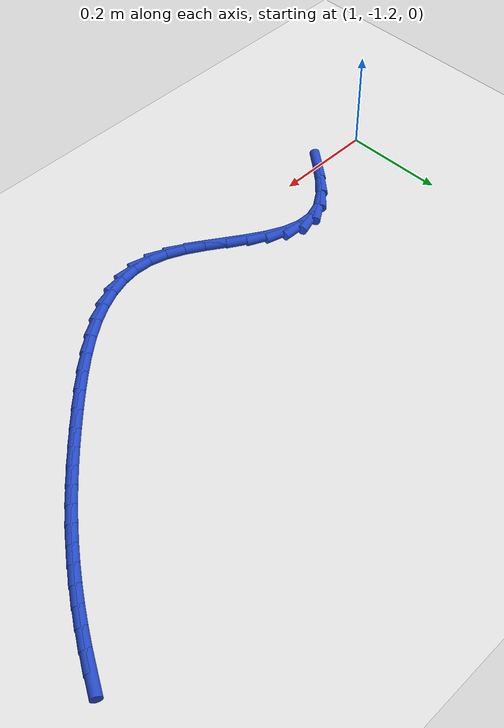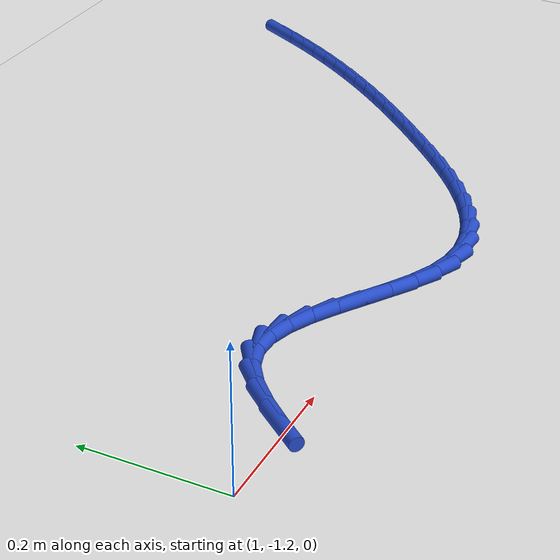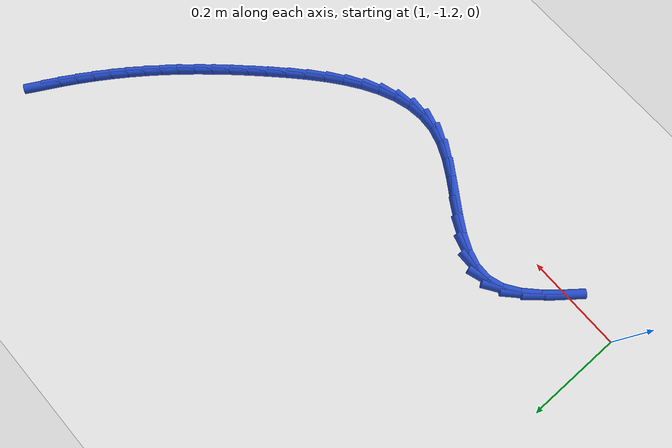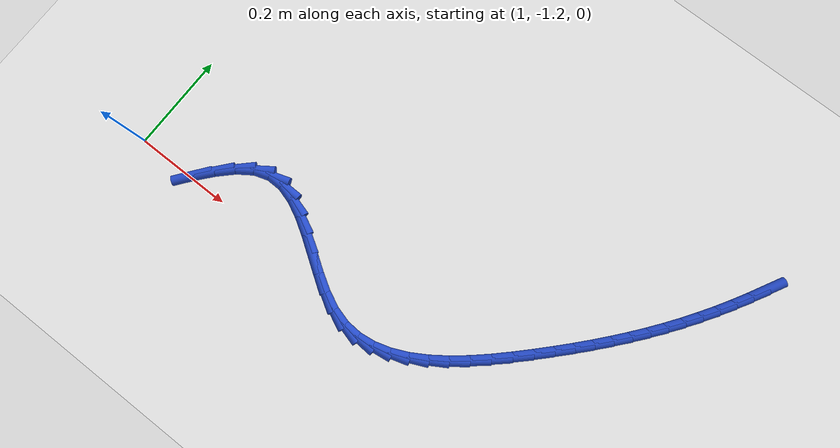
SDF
<sdf version="1.6">
 <world name="default">
  <model name="ground_plane">
   <static>1</static>
   <link name="link">
    <collision name="collision">
     <geometry><plane><normal>0 0 1</normal><size>100 100</size></plane></geometry>
     <surface><friction><ode><mu>100</mu><mu2>50</mu2></ode></friction></surface>
    </collision>
    <visual name="visual">
     <cast_shadows>0</cast_shadows>
     <geometry><plane><normal>0 0 1</normal><size>100 100</size></plane></geometry>
     <material>
      <script><uri>file://media/materials/scripts/gazebo.material</uri><name>Gazebo/WhiteGlow</name></script>
     </material>
    </visual>
   </link>
  </model>
  <model name="line">
   <link name="link_127">
    <pose>2.124885651335972 -0.6998409385289837 0.01 0 1.57 1.0710073317774622</pose>
    <collision name="collision">
     <geometry><cylinder><radius>0.01</radius><length>0.08</length></cylinder></geometry>
    </collision>
    <visual name="visual">
     <material>
      <script><name>Gazebo/Blue</name><uri>file://media/materials/scripts/gazebo.material</uri></script>
     </material>
     <geometry><cylinder><radius>0.01</radius><length>0.08</length></cylinder></geometry>
    </visual>
   </link>
   <link name="link_128">
    <pose>2.1077690370066415 -0.7311884102983778 0.01 0 1.57 1.0445506364632249</pose>
    <collision name="collision">
     <geometry><cylinder><radius>0.01</radius><length>0.08</length></cylinder></geometry>
    </collision>
    <visual name="visual">
     <material>
      <script><name>Gazebo/Blue</name><uri>file://media/materials/scripts/gazebo.material</uri></script>
     </material>
     <geometry><cylinder><radius>0.01</radius><length>0.08</length></cylinder></geometry>
    </visual>
   </link>
   <link name="link_129">
    <pose>2.090080430172719 -0.7616395493683459 0.01 0 1.57 1.018941520231611</pose>
    <collision name="collision">
     <geometry><cylinder><radius>0.01</radius><length>0.08</length></cylinder></geometry>
    </collision>
    <visual name="visual">
     <material>
      <script><name>Gazebo/Blue</name><uri>file://media/materials/scripts/gazebo.material</uri></script>
     </material>
     <geometry><cylinder><radius>0.01</radius><length>0.08</length></cylinder></geometry>
    </visual>
   </link>
   <link name="link_130">
    <pose>2.0718783756213726 -0.7912046506021759 0.01 0 1.57 0.9930822187000926</pose>
    <collision name="collision">
     <geometry><cylinder><radius>0.01</radius><length>0.08</length></cylinder></geometry>
    </collision>
    <visual name="visual">
     <material>
      <script><name>Gazebo/Blue</name><uri>file://media/materials/scripts/gazebo.material</uri></script>
     </material>
     <geometry><cylinder><radius>0.01</radius><length>0.08</length></cylinder></geometry>
    </visual>
   </link>
   <link name="link_131">
    <pose>2.053106507097106 -0.8200000014221306 0.01 0 1.57 0.9672613384659791</pose>
    <collision name="collision">
     <geometry><cylinder><radius>0.01</radius><length>0.08</length></cylinder></geometry>
    </collision>
    <visual name="visual">
     <material>
      <script><name>Gazebo/Blue</name><uri>file://media/materials/scripts/gazebo.material</uri></script>
     </material>
     <geometry><cylinder><radius>0.01</radius><length>0.08</length></cylinder></geometry>
    </visual>
   </link>
   <link name="link_132">
    <pose>2.033705025837022 -0.8481450553538746 0.01 0 1.57 0.9418145961172039</pose>
    <collision name="collision">
     <geometry><cylinder><radius>0.01</radius><length>0.08</length></cylinder></geometry>
    </collision>
    <visual name="visual">
     <material>
      <script><name>Gazebo/Blue</name><uri>file://media/materials/scripts/gazebo.material</uri></script>
     </material>
     <geometry><cylinder><radius>0.01</radius><length>0.08</length></cylinder></geometry>
    </visual>
   </link>
   <link name="link_133">
    <pose>2.0136141330782182 -0.8757592659230738 0.01 0 1.57 0.9170700820153106</pose>
    <collision name="collision">
     <geometry><cylinder><radius>0.01</radius><length>0.08</length></cylinder></geometry>
    </collision>
    <visual name="visual">
     <material>
      <script><name>Gazebo/Blue</name><uri>file://media/materials/scripts/gazebo.material</uri></script>
     </material>
     <geometry><cylinder><radius>0.01</radius><length>0.08</length></cylinder></geometry>
    </visual>
   </link>
   <link name="link_134">
    <pose>1.9927740300577976 -0.9029620866553943 0.01 0 1.57 0.8933331657874355</pose>
    <collision name="collision">
     <geometry><cylinder><radius>0.01</radius><length>0.08</length></cylinder></geometry>
    </collision>
    <visual name="visual">
     <material>
      <script><name>Gazebo/Blue</name><uri>file://media/materials/scripts/gazebo.material</uri></script>
     </material>
     <geometry><cylinder><radius>0.01</radius><length>0.08</length></cylinder></geometry>
    </visual>
   </link>
   <link name="link_135">
    <pose>1.971124918012859 -0.9298729710765027 0.01 0 1.57 0.8708734557451395</pose>
    <collision name="collision">
     <geometry><cylinder><radius>0.01</radius><length>0.08</length></cylinder></geometry>
    </collision>
    <visual name="visual">
     <material>
      <script><name>Gazebo/Blue</name><uri>file://media/materials/scripts/gazebo.material</uri></script>
     </material>
     <geometry><cylinder><radius>0.01</radius><length>0.08</length></cylinder></geometry>
    </visual>
   </link>
   <link name="link_136">
    <pose>1.9486069981805043 -0.9566113727120634 0.01 0 1.57 0.8499149882618812</pose>
    <collision name="collision">
     <geometry><cylinder><radius>0.01</radius><length>0.08</length></cylinder></geometry>
    </collision>
    <visual name="visual">
     <material>
      <script><name>Gazebo/Blue</name><uri>file://media/materials/scripts/gazebo.material</uri></script>
     </material>
     <geometry><cylinder><radius>0.01</radius><length>0.08</length></cylinder></geometry>
    </visual>
   </link>
   <link name="link_137">
    <pose>1.9251604717978343 -0.9832967450877429 0.01 0 1.57 0.8306302918312929</pose>
    <collision name="collision">
     <geometry><cylinder><radius>0.01</radius><length>0.08</length></cylinder></geometry>
    </collision>
    <visual name="visual">
     <material>
      <script><name>Gazebo/Blue</name><uri>file://media/materials/scripts/gazebo.material</uri></script>
     </material>
     <geometry><cylinder><radius>0.01</radius><length>0.08</length></cylinder></geometry>
    </visual>
   </link>
   <link name="link_138">
    <pose>1.900725540101949 -1.0100485417292069 0.01 0 1.57 0.8131383974179058</pose>
    <collision name="collision">
     <geometry><cylinder><radius>0.01</radius><length>0.08</length></cylinder></geometry>
    </collision>
    <visual name="visual">
     <material>
      <script><name>Gazebo/Blue</name><uri>file://media/materials/scripts/gazebo.material</uri></script>
     </material>
     <geometry><cylinder><radius>0.01</radius><length>0.08</length></cylinder></geometry>
    </visual>
   </link>
   <link name="link_139">
    <pose>1.8752424043299485 -1.036986216162122 0.01 0 1.57 0.7975063763160665</pose>
    <collision name="collision">
     <geometry><cylinder><radius>0.01</radius><length>0.08</length></cylinder></geometry>
    </collision>
    <visual name="visual">
     <material>
      <script><name>Gazebo/Blue</name><uri>file://media/materials/scripts/gazebo.material</uri></script>
     </material>
     <geometry><cylinder><radius>0.01</radius><length>0.08</length></cylinder></geometry>
    </visual>
   </link>
   <link name="link_140">
    <pose>1.8486512657189351 -1.0642292219121525 0.01 0 1.57 0.7822895808287913</pose>
    <collision name="collision">
     <geometry><cylinder><radius>0.01</radius><length>0.08</length></cylinder></geometry>
    </collision>
    <visual name="visual">
     <material>
      <script><name>Gazebo/Blue</name><uri>file://media/materials/scripts/gazebo.material</uri></script>
     </material>
     <geometry><cylinder><radius>0.01</radius><length>0.08</length></cylinder></geometry>
    </visual>
   </link>
   <link name="link_141">
    <pose>1.8209121499818057 -1.0917964128745525 0.01 0 1.57 0.7590153277696629</pose>
    <collision name="collision">
     <geometry><cylinder><radius>0.01</radius><length>0.08</length></cylinder></geometry>
    </collision>
    <visual name="visual">
     <material>
      <script><name>Gazebo/Blue</name><uri>file://media/materials/scripts/gazebo.material</uri></script>
     </material>
     <geometry><cylinder><radius>0.01</radius><length>0.08</length></cylinder></geometry>
    </visual>
   </link>
   <link name="link_142">
    <pose>1.7920991468010437 -1.1191278234438145 0.01 0 1.57 0.7241033151162577</pose>
    <collision name="collision">
     <geometry><cylinder><radius>0.01</radius><length>0.08</length></cylinder></geometry>
    </collision>
    <visual name="visual">
     <material>
      <script><name>Gazebo/Blue</name><uri>file://media/materials/scripts/gazebo.material</uri></script>
     </material>
     <geometry><cylinder><radius>0.01</radius><length>0.08</length></cylinder></geometry>
    </visual>
   </link>
   <link name="link_143">
    <pose>1.7623270594222422 -1.1454568863648513 0.01 0 1.57 0.6760706616389798</pose>
    <collision name="collision">
     <geometry><cylinder><radius>0.01</radius><length>0.08</length></cylinder></geometry>
    </collision>
    <visual name="visual">
     <material>
      <script><name>Gazebo/Blue</name><uri>file://media/materials/scripts/gazebo.material</uri></script>
     </material>
     <geometry><cylinder><radius>0.01</radius><length>0.08</length></cylinder></geometry>
    </visual>
   </link>
   <link name="link_144">
    <pose>1.731710741620537 -1.1700167779695843 0.01 0 1.57 0.6124775935456762</pose>
    <collision name="collision">
     <geometry><cylinder><radius>0.01</radius><length>0.08</length></cylinder></geometry>
    </collision>
    <visual name="visual">
     <material>
      <script><name>Gazebo/Blue</name><uri>file://media/materials/scripts/gazebo.material</uri></script>
     </material>
     <geometry><cylinder><radius>0.01</radius><length>0.08</length></cylinder></geometry>
    </visual>
   </link>
   <link name="link_145">
    <pose>1.7003650471710634 -1.1920406745899375 0.01 0 1.57 0.52988452881321</pose>
    <collision name="collision">
     <geometry><cylinder><radius>0.01</radius><length>0.08</length></cylinder></geometry>
    </collision>
    <visual name="visual">
     <material>
      <script><name>Gazebo/Blue</name><uri>file://media/materials/scripts/gazebo.material</uri></script>
     </material>
     <geometry><cylinder><radius>0.01</radius><length>0.08</length></cylinder></geometry>
    </visual>
   </link>
   <link name="link_146">
    <pose>1.6684048298489558 -1.2107617525578327 0.01 0 1.57 0.42399306275028925</pose>
    <collision name="collision">
     <geometry><cylinder><radius>0.01</radius><length>0.08</length></cylinder></geometry>
    </collision>
    <visual name="visual">
     <material>
      <script><name>Gazebo/Blue</name><uri>file://media/materials/scripts/gazebo.material</uri></script>
     </material>
     <geometry><cylinder><radius>0.01</radius><length>0.08</length></cylinder></geometry>
    </visual>
   </link>
   <link name="link_147">
    <pose>1.6359449434293483 -1.2254131882051933 0.01 0 1.57 0.2903827034960389</pose>
    <collision name="collision">
     <geometry><cylinder><radius>0.01</radius><length>0.08</length></cylinder></geometry>
    </collision>
    <visual name="visual">
     <material>
      <script><name>Gazebo/Blue</name><uri>file://media/materials/scripts/gazebo.material</uri></script>
     </material>
     <geometry><cylinder><radius>0.01</radius><length>0.08</length></cylinder></geometry>
    </visual>
   </link>
   <link name="link_148">
    <pose>1.603100241687375 -1.2352281578639415 0.01 0 1.57 0.12650554638039369</pose>
    <collision name="collision">
     <geometry><cylinder><radius>0.01</radius><length>0.08</length></cylinder></geometry>
    </collision>
    <visual name="visual">
     <material>
      <script><name>Gazebo/Blue</name><uri>file://media/materials/scripts/gazebo.material</uri></script>
     </material>
     <geometry><cylinder><radius>0.01</radius><length>0.08</length></cylinder></geometry>
    </visual>
   </link>
   <link name="link_149">
    <pose>1.5699855783981727 -1.2394398378659994 0.01 0 1.57 -0.0647859184346579</pose>
    <collision name="collision">
     <geometry><cylinder><radius>0.01</radius><length>0.08</length></cylinder></geometry>
    </collision>
    <visual name="visual">
     <material>
      <script><name>Gazebo/Blue</name><uri>file://media/materials/scripts/gazebo.material</uri></script>
     </material>
     <geometry><cylinder><radius>0.01</radius><length>0.08</length></cylinder></geometry>
    </visual>
   </link>
   <link name="link_150">
    <pose>1.536715807336875 -1.2372814045432905 0.01 0 1.57 -0.2702677421835225</pose>
    <collision name="collision">
     <geometry><cylinder><radius>0.01</radius><length>0.08</length></cylinder></geometry>
    </collision>
    <visual name="visual">
     <material>
      <script><name>Gazebo/Blue</name><uri>file://media/materials/scripts/gazebo.material</uri></script>
     </material>
     <geometry><cylinder><radius>0.01</radius><length>0.08</length></cylinder></geometry>
    </visual>
   </link>
   <link name="link_151">
    <pose>1.5034043692044126 -1.2280525902914774 0.01 0 1.57 -0.43797938933093633</pose>
    <collision name="collision">
     <geometry><cylinder><radius>0.01</radius><length>0.08</length></cylinder></geometry>
    </collision>
    <visual name="visual">
     <material>
      <script><name>Gazebo/Blue</name><uri>file://media/materials/scripts/gazebo.material</uri></script>
     </material>
     <geometry><cylinder><radius>0.01</radius><length>0.08</length></cylinder></geometry>
    </visual>
   </link>
   <link name="link_152">
    <pose>1.470134582911858 -1.2124718695362393 0.01 0 1.57 -0.5393282233454922</pose>
    <collision name="collision">
     <geometry><cylinder><radius>0.01</radius><length>0.08</length></cylinder></geometry>
    </collision>
    <visual name="visual">
     <material>
      <script><name>Gazebo/Blue</name><uri>file://media/materials/scripts/gazebo.material</uri></script>
     </material>
     <geometry><cylinder><radius>0.01</radius><length>0.08</length></cylinder></geometry>
    </visual>
   </link>
   <link name="link_153">
    <pose>1.4369609107647079 -1.1926168683132248 0.01 0 1.57 -0.5876011302445034</pose>
    <collision name="collision">
     <geometry><cylinder><radius>0.01</radius><length>0.08</length></cylinder></geometry>
    </collision>
    <visual name="visual">
     <material>
      <script><name>Gazebo/Blue</name><uri>file://media/materials/scripts/gazebo.material</uri></script>
     </material>
     <geometry><cylinder><radius>0.01</radius><length>0.08</length></cylinder></geometry>
    </visual>
   </link>
   <link name="link_154">
    <pose>1.4039366551771695 -1.1706198437582702 0.01 0 1.57 -0.5906507150953209</pose>
    <collision name="collision">
     <geometry><cylinder><radius>0.01</radius><length>0.08</length></cylinder></geometry>
    </collision>
    <visual name="visual">
     <material>
      <script><name>Gazebo/Blue</name><uri>file://media/materials/scripts/gazebo.material</uri></script>
     </material>
     <geometry><cylinder><radius>0.01</radius><length>0.08</length></cylinder></geometry>
    </visual>
   </link>
   <link name="link_155">
    <pose>1.3711151185634503 -1.1486130530072123 0.01 0 1.57 -0.5481726247287544</pose>
    <collision name="collision">
     <geometry><cylinder><radius>0.01</radius><length>0.08</length></cylinder></geometry>
    </collision>
    <visual name="visual">
     <material>
      <script><name>Gazebo/Blue</name><uri>file://media/materials/scripts/gazebo.material</uri></script>
     </material>
     <geometry><cylinder><radius>0.01</radius><length>0.08</length></cylinder></geometry>
    </visual>
   </link>
   <link name="link_156">
    <pose>1.338549603337757 -1.1287287531958878 0.01 0 1.57 -0.451206725024334</pose>
    <collision name="collision">
     <geometry><cylinder><radius>0.01</radius><length>0.08</length></cylinder></geometry>
    </collision>
    <visual name="visual">
     <material>
      <script><name>Gazebo/Blue</name><uri>file://media/materials/scripts/gazebo.material</uri></script>
     </material>
     <geometry><cylinder><radius>0.01</radius><length>0.08</length></cylinder></geometry>
    </visual>
   </link>
   <link name="link_157">
    <pose>1.3062934119142993 -1.1130992014601342 0.01 0 1.57 -0.2820668914106248</pose>
    <collision name="collision">
     <geometry><cylinder><radius>0.01</radius><length>0.08</length></cylinder></geometry>
    </collision>
    <visual name="visual">
     <material>
      <script><name>Gazebo/Blue</name><uri>file://media/materials/scripts/gazebo.material</uri></script>
     </material>
     <geometry><cylinder><radius>0.01</radius><length>0.08</length></cylinder></geometry>
    </visual>
   </link>
   <link name="link_158">
    <pose>1.2743998467072843 -1.1038566549357884 0.01 0 1.57 -0.02297367286676132</pose>
    <collision name="collision">
     <geometry><cylinder><radius>0.01</radius><length>0.08</length></cylinder></geometry>
    </collision>
    <visual name="visual">
     <material>
      <script><name>Gazebo/Blue</name><uri>file://media/materials/scripts/gazebo.material</uri></script>
     </material>
     <geometry><cylinder><radius>0.01</radius><length>0.08</length></cylinder></geometry>
    </visual>
   </link>
   <link name="link_159">
    <pose>1.2429222101309196 -1.103133370758687 0.01 0 1.57 0.3091511092610649</pose>
    <collision name="collision">
     <geometry><cylinder><radius>0.01</radius><length>0.08</length></cylinder></geometry>
    </collision>
    <visual name="visual">
     <material>
      <script><name>Gazebo/Blue</name><uri>file://media/materials/scripts/gazebo.material</uri></script>
     </material>
     <geometry><cylinder><radius>0.01</radius><length>0.08</length></cylinder></geometry>
    </visual>
   </link>
   <link name="link_160">
    <pose>1.2119148298434796 -1.1130368726497664 0.01 0 1.57 0.5985178091310098</pose>
    <collision name="collision">
     <geometry><cylinder><radius>0.01</radius><length>0.08</length></cylinder></geometry>
    </collision>
    <visual name="visual">
     <material>
      <script><name>Gazebo/Blue</name><uri>file://media/materials/scripts/gazebo.material</uri></script>
     </material>
     <geometry><cylinder><radius>0.01</radius><length>0.08</length></cylinder></geometry>
    </visual>
   </link>
   <link name="link_161">
    <pose>1.1815109360669096 -1.1337712060207832 0.01 0 1.57 0.7684365523648371</pose>
    <collision name="collision">
     <geometry><cylinder><radius>0.01</radius><length>0.08</length></cylinder></geometry>
    </collision>
    <visual name="visual">
     <material>
      <script><name>Gazebo/Blue</name><uri>file://media/materials/scripts/gazebo.material</uri></script>
     </material>
     <geometry><cylinder><radius>0.01</radius><length>0.08</length></cylinder></geometry>
    </visual>
   </link>
   <link name="link_162">
    <pose>1.151977266967972 -1.1623196150160962 0.01 0 1.57 0.8609750468475419</pose>
    <collision name="collision">
     <geometry><cylinder><radius>0.01</radius><length>0.08</length></cylinder></geometry>
    </collision>
    <visual name="visual">
     <material>
      <script><name>Gazebo/Blue</name><uri>file://media/materials/scripts/gazebo.material</uri></script>
     </material>
     <geometry><cylinder><radius>0.01</radius><length>0.08</length></cylinder></geometry>
    </visual>
   </link>
   <link name="link_163">
    <pose>1.1235934632360938 -1.1953540779493612 0.01 0 1.57 0.9032239781537273</pose>
    <collision name="collision">
     <geometry><cylinder><radius>0.01</radius><length>0.08</length></cylinder></geometry>
    </collision>
    <visual name="visual">
     <material>
      <script><name>Gazebo/Blue</name><uri>file://media/materials/scripts/gazebo.material</uri></script>
     </material>
     <geometry><cylinder><radius>0.01</radius><length>0.08</length></cylinder></geometry>
    </visual>
   </link>
  </model>
 </world>
</sdf>
